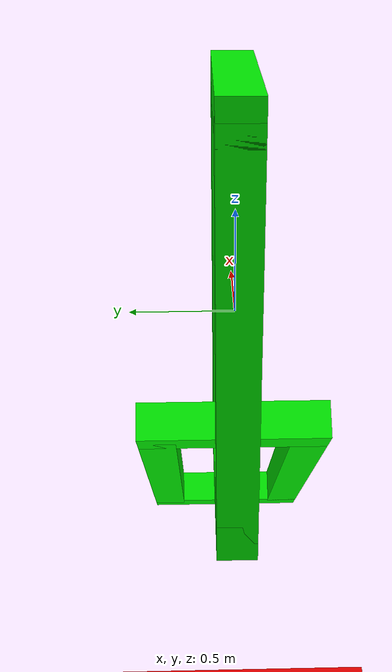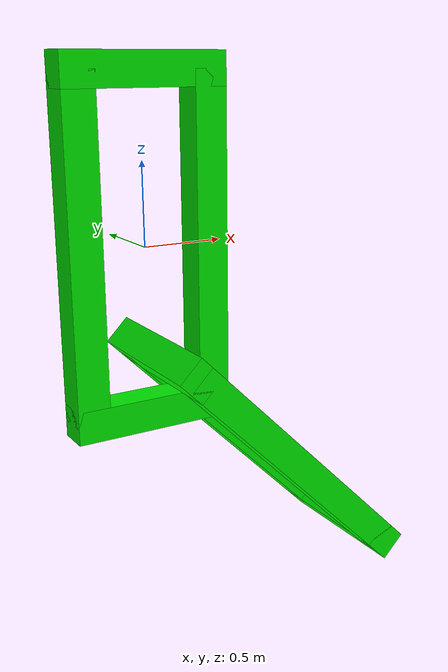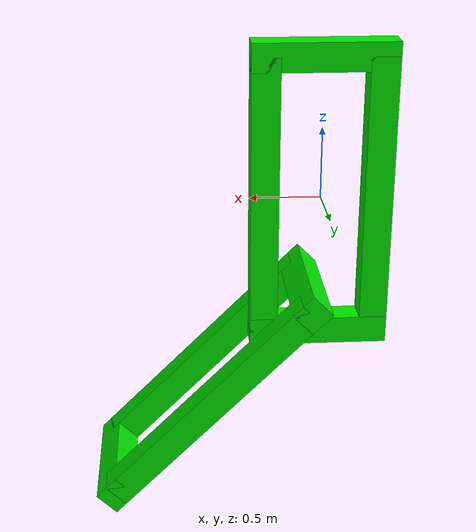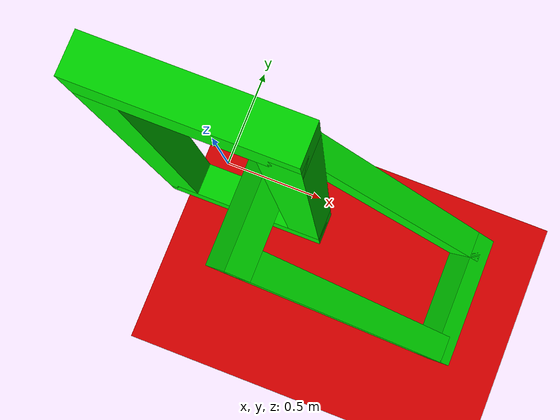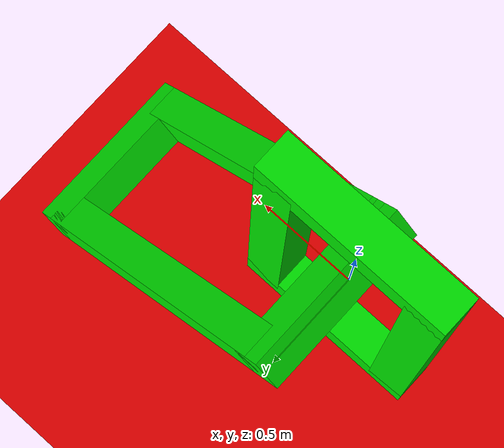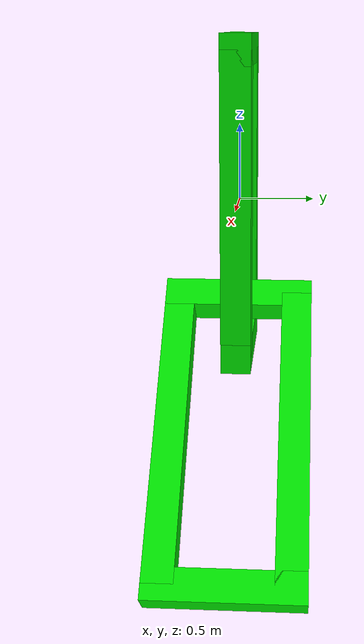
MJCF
<mujoco>
    <option timestep="0.01" integrator="RK4">
		<flag gravity="disable" energy="enable"/>
	</option>
    <compiler autolimits="true" eulerseq="zyx"/>
    <worldbody>
        <light diffuse=".5 .5 .5" pos="0 0 3" dir="0 0 -1"/>
        <geom type="plane" pos="0 0 -5" size="3 3 0.1" rgba=".9 0 0 1"/>
        <body name="body0" pos="0 0 0" euler="0 0 0">
            <joint name="joint0" type="ball" pos="0 0 1"/>
            <geom name="left0" type="box" size="0.1 0.1 1" pos="-0.4 0 0" rgba="0 .9 0 1" mass="1"/>
            <geom name="right0" type="box" size="0.1 0.1 1"  pos="0.4 0 0" rgba="0 .9 0 1" mass="1"/>
            <geom name="top0" type="box" size="0.1 0.1 0.5"  pos="0 0 1" euler="0 -90 0" rgba="0 .9 0 1" mass="1"/>
            <geom name="bottom0" type="box" size="0.1 0.1 0.5"  pos="0 0 -1" euler="0 -90 0" rgba="0 .9 0 1" mass="1"/>
        </body>
        <body name="body1" pos="0.8 0 -1.4" euler="90 0 135">
            <joint type="free"/>
            <geom name="left1" type="box" size="0.1 0.1 1" pos="-0.4 0 0" rgba="0 .9 0 1" mass="1"/>
            <geom name="right1" type="box" size="0.1 0.1 1"  pos="0.4 0 0" rgba="0 .9 0 1" mass="1"/>
            <geom name="top1" type="box" size="0.1 0.1 0.5"  pos="0 0 1" euler="0 -90 0" rgba="0 .9 0 1" mass="1"/>
            <geom name="bottom1" type="box" size="0.1 0.1 0.5"  pos="0 0 -1" euler="0 -90 0" rgba="0 .9 0 1" mass="1"/>
        </body>
    </worldbody>
</mujoco>
